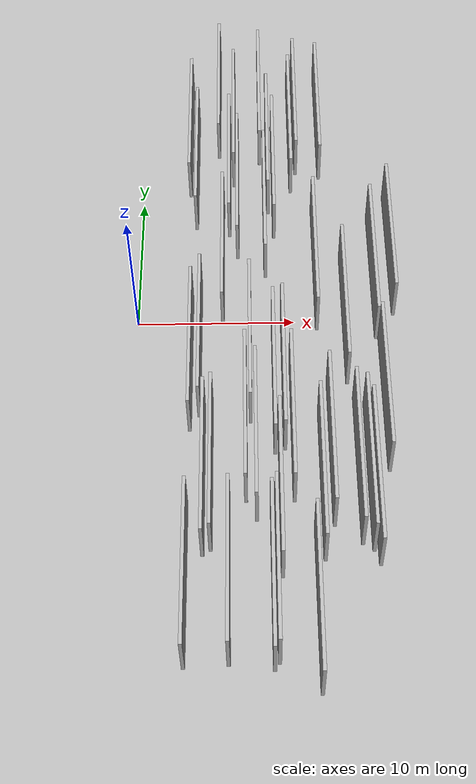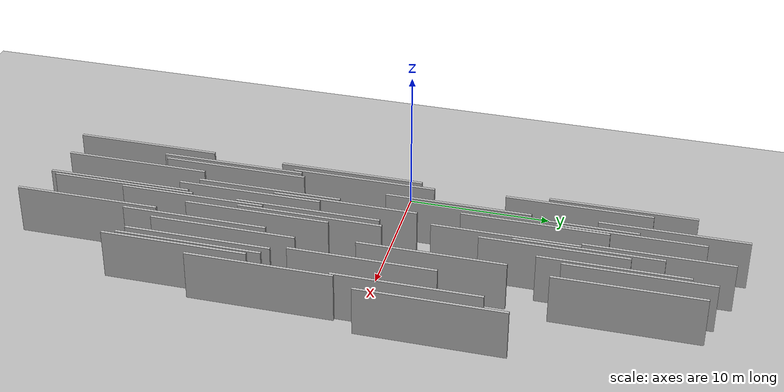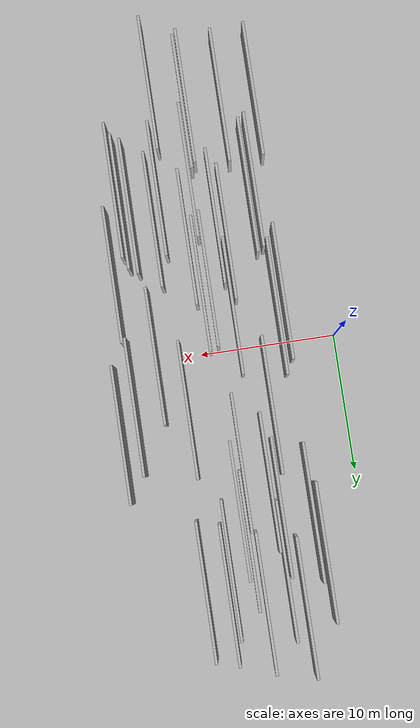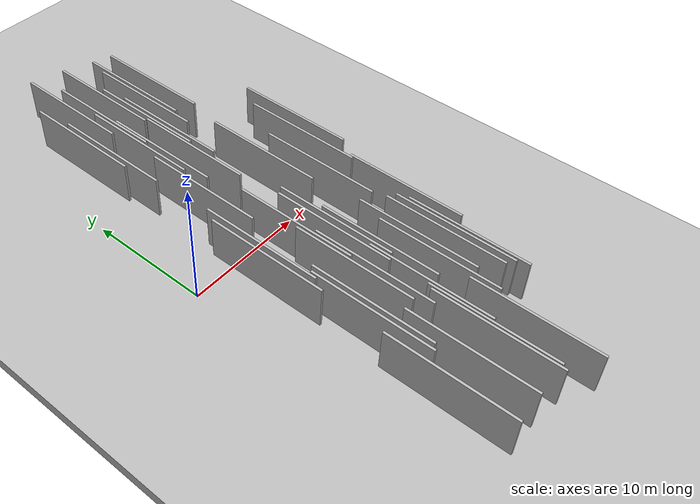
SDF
<?xml version="1.0" encoding="utf-8"?>

<sdf version="1.6">

   <world name="default">

      <gui fullscreen="0">

         <camera name="user_camera">

            <pose>-15 0 4.57585 0 0 0</pose>

            <view_controller>orbit</view_controller>

         </camera>

      </gui>

      <scene>

         <sky>

           <clouds>

             <speed>12</speed>

           </clouds>

         </sky>

         <ambient>0.4 0.4 0.4 1</ambient>

         <background>0.7 0.7 0.7 1</background>

         <shadows>1</shadows>

      </scene>

      <gravity>0 0 -9.8066</gravity>

      <magnetic_field>6e-06 2.3e-05 -4.2e-05</magnetic_field>

      <physics default="0" name="default_physics" type="ode">

         <ode>

            <solver>

               <type>quick</type>

               <iters>10</iters>

               <sor>1.0</sor>

               <use_dynamic_moi_rescaling>0</use_dynamic_moi_rescaling>

            </solver>

            <constraints>

               <cfm>0</cfm>

               <erp>0.2</erp>

               <contact_max_correcting_vel>100</contact_max_correcting_vel>

               <contact_surface_layer>0.001</contact_surface_layer>

            </constraints>

         </ode>

         <max_step_size>0.004</max_step_size>

         <real_time_factor>1</real_time_factor>

         <real_time_update_rate>250</real_time_update_rate>

      </physics>

      <light name="sun" type="directional">

         <cast_shadows>1</cast_shadows>

         <pose>0 0 10 0 0 0</pose>

         <diffuse>0.8 0.8 0.8 1</diffuse>

         <specular>0.2 0.2 0.2 1</specular>

         <attenuation>

            <range>1000</range>

            <constant>0.9</constant>

            <linear>0.01</linear>

            <quadratic>0.001</quadratic>

         </attenuation>

         <direction>-0.5 0.1 -0.9</direction>

      </light>

      <include>

         <name>ground_plane_1</name>

         <uri>model://HANNAS_ground_plane</uri>

         <pose>0 0 0  0 0 0</pose>

      </include>

      <include>

         <name>ground_plane_2</name>

         <uri>model://HANNAS_ground_plane</uri>

         <pose>100 0 0  0 0 0</pose>

      </include>

      <model name="HANNAS_wall_1">

         <static>1</static>

         <pose frame="">16.3726 5.1101 0.0 0.000000 0.000000 1.570796</pose>

         <link name="link">

            <pose frame="">0 0 2.00 0 0 0</pose>

            <collision name="collision">

               <geometry>

                  <box>

                     <size>10.00 0.2 4.00</size>

                  </box>

               </geometry>

               <max_contacts>10</max_contacts>

               <surface>

                  <contact>

                     <ode/>

                  </contact>

                  <bounce/>

                  <friction>

                     <torsional>

                        <ode/>

                     </torsional>

                     <ode/>

                  </friction>

               </surface>

            </collision>

            <visual name="visual">

               <cast_shadows>0</cast_shadows>

               <geometry>

                  <box>

                     <size>10.00 0.2 4.00</size>

                  </box>

               </geometry>

               <material>

                  <script>

                     <uri>model://HANNAS_wall/materials/scripts</uri>

                     <uri>model://HANNAS_wall/materials/textures</uri>

                     <name>vrc/HANNAS_wall</name>

                  </script>

               </material>

            </visual>

            <self_collide>0</self_collide>

            <enable_wind>0</enable_wind>

            <kinematic>0</kinematic>

         </link>

      </model>

      <model name="HANNAS_wall_2">

         <static>1</static>

         <pose frame="">14.4678 -12.4414 0.0 0.000000 0.000000 1.570796</pose>

         <link name="link">

            <pose frame="">0 0 2.00 0 0 0</pose>

            <collision name="collision">

               <geometry>

                  <box>

                     <size>10.00 0.2 4.00</size>

                  </box>

               </geometry>

               <max_contacts>10</max_contacts>

               <surface>

                  <contact>

                     <ode/>

                  </contact>

                  <bounce/>

                  <friction>

                     <torsional>

                        <ode/>

                     </torsional>

                     <ode/>

                  </friction>

               </surface>

            </collision>

            <visual name="visual">

               <cast_shadows>0</cast_shadows>

               <geometry>

                  <box>

                     <size>10.00 0.2 4.00</size>

                  </box>

               </geometry>

               <material>

                  <script>

                     <uri>model://HANNAS_wall/materials/scripts</uri>

                     <uri>model://HANNAS_wall/materials/textures</uri>

                     <name>vrc/HANNAS_wall</name>

                  </script>

               </material>

            </visual>

            <self_collide>0</self_collide>

            <enable_wind>0</enable_wind>

            <kinematic>0</kinematic>

         </link>

      </model>

      <model name="HANNAS_wall_3">

         <static>1</static>

         <pose frame="">13.5207 -11.1368 0.0 0.000000 0.000000 1.570796</pose>

         <link name="link">

            <pose frame="">0 0 2.00 0 0 0</pose>

            <collision name="collision">

               <geometry>

                  <box>

                     <size>10.00 0.2 4.00</size>

                  </box>

               </geometry>

               <max_contacts>10</max_contacts>

               <surface>

                  <contact>

                     <ode/>

                  </contact>

                  <bounce/>

                  <friction>

                     <torsional>

                        <ode/>

                     </torsional>

                     <ode/>

                  </friction>

               </surface>

            </collision>

            <visual name="visual">

               <cast_shadows>0</cast_shadows>

               <geometry>

                  <box>

                     <size>10.00 0.2 4.00</size>

                  </box>

               </geometry>

               <material>

                  <script>

                     <uri>model://HANNAS_wall/materials/scripts</uri>

                     <uri>model://HANNAS_wall/materials/textures</uri>

                     <name>vrc/HANNAS_wall</name>

                  </script>

               </material>

            </visual>

            <self_collide>0</self_collide>

            <enable_wind>0</enable_wind>

            <kinematic>0</kinematic>

         </link>

      </model>

      <model name="HANNAS_wall_4">

         <static>1</static>

         <pose frame="">8.8303 11.6349 0.0 0.000000 0.000000 1.570796</pose>

         <link name="link">

            <pose frame="">0 0 2.00 0 0 0</pose>

            <collision name="collision">

               <geometry>

                  <box>

                     <size>10.00 0.2 4.00</size>

                  </box>

               </geometry>

               <max_contacts>10</max_contacts>

               <surface>

                  <contact>

                     <ode/>

                  </contact>

                  <bounce/>

                  <friction>

                     <torsional>

                        <ode/>

                     </torsional>

                     <ode/>

                  </friction>

               </surface>

            </collision>

            <visual name="visual">

               <cast_shadows>0</cast_shadows>

               <geometry>

                  <box>

                     <size>10.00 0.2 4.00</size>

                  </box>

               </geometry>

               <material>

                  <script>

                     <uri>model://HANNAS_wall/materials/scripts</uri>

                     <uri>model://HANNAS_wall/materials/textures</uri>

                     <name>vrc/HANNAS_wall</name>

                  </script>

               </material>

            </visual>

            <self_collide>0</self_collide>

            <enable_wind>0</enable_wind>

            <kinematic>0</kinematic>

         </link>

      </model>

      <model name="HANNAS_wall_5">

         <static>1</static>

         <pose frame="">8.5995 -18.1956 0.0 0.000000 0.000000 1.570796</pose>

         <link name="link">

            <pose frame="">0 0 2.00 0 0 0</pose>

            <collision name="collision">

               <geometry>

                  <box>

                     <size>10.00 0.2 4.00</size>

                  </box>

               </geometry>

               <max_contacts>10</max_contacts>

               <surface>

                  <contact>

                     <ode/>

                  </contact>

                  <bounce/>

                  <friction>

                     <torsional>

                        <ode/>

                     </torsional>

                     <ode/>

                  </friction>

               </surface>

            </collision>

            <visual name="visual">

               <cast_shadows>0</cast_shadows>

               <geometry>

                  <box>

                     <size>10.00 0.2 4.00</size>

                  </box>

               </geometry>

               <material>

                  <script>

                     <uri>model://HANNAS_wall/materials/scripts</uri>

                     <uri>model://HANNAS_wall/materials/textures</uri>

                     <name>vrc/HANNAS_wall</name>

                  </script>

               </material>

            </visual>

            <self_collide>0</self_collide>

            <enable_wind>0</enable_wind>

            <kinematic>0</kinematic>

         </link>

      </model>

      <model name="HANNAS_wall_6">

         <static>1</static>

         <pose frame="">5.8146 -18.2855 0.0 0.000000 0.000000 1.570796</pose>

         <link name="link">

            <pose frame="">0 0 2.00 0 0 0</pose>

            <collision name="collision">

               <geometry>

                  <box>

                     <size>10.00 0.2 4.00</size>

                  </box>

               </geometry>

               <max_contacts>10</max_contacts>

               <surface>

                  <contact>

                     <ode/>

                  </contact>

                  <bounce/>

                  <friction>

                     <torsional>

                        <ode/>

                     </torsional>

                     <ode/>

                  </friction>

               </surface>

            </collision>

            <visual name="visual">

               <cast_shadows>0</cast_shadows>

               <geometry>

                  <box>

                     <size>10.00 0.2 4.00</size>

                  </box>

               </geometry>

               <material>

                  <script>

                     <uri>model://HANNAS_wall/materials/scripts</uri>

                     <uri>model://HANNAS_wall/materials/textures</uri>

                     <name>vrc/HANNAS_wall</name>

                  </script>

               </material>

            </visual>

            <self_collide>0</self_collide>

            <enable_wind>0</enable_wind>

            <kinematic>0</kinematic>

         </link>

      </model>

      <model name="HANNAS_wall_7">

         <static>1</static>

         <pose frame="">11.9483 -9.9297 0.0 0.000000 0.000000 1.570796</pose>

         <link name="link">

            <pose frame="">0 0 2.00 0 0 0</pose>

            <collision name="collision">

               <geometry>

                  <box>

                     <size>10.00 0.2 4.00</size>

                  </box>

               </geometry>

               <max_contacts>10</max_contacts>

               <surface>

                  <contact>

                     <ode/>

                  </contact>

                  <bounce/>

                  <friction>

                     <torsional>

                        <ode/>

                     </torsional>

                     <ode/>

                  </friction>

               </surface>

            </collision>

            <visual name="visual">

               <cast_shadows>0</cast_shadows>

               <geometry>

                  <box>

                     <size>10.00 0.2 4.00</size>

                  </box>

               </geometry>

               <material>

                  <script>

                     <uri>model://HANNAS_wall/materials/scripts</uri>

                     <uri>model://HANNAS_wall/materials/textures</uri>

                     <name>vrc/HANNAS_wall</name>

                  </script>

               </material>

            </visual>

            <self_collide>0</self_collide>

            <enable_wind>0</enable_wind>

            <kinematic>0</kinematic>

         </link>

      </model>

      <model name="HANNAS_wall_8">

         <static>1</static>

         <pose frame="">8.8784 -13.1266 0.0 0.000000 0.000000 1.570796</pose>

         <link name="link">

            <pose frame="">0 0 2.00 0 0 0</pose>

            <collision name="collision">

               <geometry>

                  <box>

                     <size>10.00 0.2 4.00</size>

                  </box>

               </geometry>

               <max_contacts>10</max_contacts>

               <surface>

                  <contact>

                     <ode/>

                  </contact>

                  <bounce/>

                  <friction>

                     <torsional>

                        <ode/>

                     </torsional>

                     <ode/>

                  </friction>

               </surface>

            </collision>

            <visual name="visual">

               <cast_shadows>0</cast_shadows>

               <geometry>

                  <box>

                     <size>10.00 0.2 4.00</size>

                  </box>

               </geometry>

               <material>

                  <script>

                     <uri>model://HANNAS_wall/materials/scripts</uri>

                     <uri>model://HANNAS_wall/materials/textures</uri>

                     <name>vrc/HANNAS_wall</name>

                  </script>

               </material>

            </visual>

            <self_collide>0</self_collide>

            <enable_wind>0</enable_wind>

            <kinematic>0</kinematic>

         </link>

      </model>

      <model name="HANNAS_wall_9">

         <static>1</static>

         <pose frame="">15.3824 -6.3594 0.0 0.000000 0.000000 1.570796</pose>

         <link name="link">

            <pose frame="">0 0 2.00 0 0 0</pose>

            <collision name="collision">

               <geometry>

                  <box>

                     <size>10.00 0.2 4.00</size>

                  </box>

               </geometry>

               <max_contacts>10</max_contacts>

               <surface>

                  <contact>

                     <ode/>

                  </contact>

                  <bounce/>

                  <friction>

                     <torsional>

                        <ode/>

                     </torsional>

                     <ode/>

                  </friction>

               </surface>

            </collision>

            <visual name="visual">

               <cast_shadows>0</cast_shadows>

               <geometry>

                  <box>

                     <size>10.00 0.2 4.00</size>

                  </box>

               </geometry>

               <material>

                  <script>

                     <uri>model://HANNAS_wall/materials/scripts</uri>

                     <uri>model://HANNAS_wall/materials/textures</uri>

                     <name>vrc/HANNAS_wall</name>

                  </script>

               </material>

            </visual>

            <self_collide>0</self_collide>

            <enable_wind>0</enable_wind>

            <kinematic>0</kinematic>

         </link>

      </model>

      <model name="HANNAS_wall_10">

         <static>1</static>

         <pose frame="">5.8717 11.8155 0.0 0.000000 0.000000 1.570796</pose>

         <link name="link">

            <pose frame="">0 0 2.00 0 0 0</pose>

            <collision name="collision">

               <geometry>

                  <box>

                     <size>10.00 0.2 4.00</size>

                  </box>

               </geometry>

               <max_contacts>10</max_contacts>

               <surface>

                  <contact>

                     <ode/>

                  </contact>

                  <bounce/>

                  <friction>

                     <torsional>

                        <ode/>

                     </torsional>

                     <ode/>

                  </friction>

               </surface>

            </collision>

            <visual name="visual">

               <cast_shadows>0</cast_shadows>

               <geometry>

                  <box>

                     <size>10.00 0.2 4.00</size>

                  </box>

               </geometry>

               <material>

                  <script>

                     <uri>model://HANNAS_wall/materials/scripts</uri>

                     <uri>model://HANNAS_wall/materials/textures</uri>

                     <name>vrc/HANNAS_wall</name>

                  </script>

               </material>

            </visual>

            <self_collide>0</self_collide>

            <enable_wind>0</enable_wind>

            <kinematic>0</kinematic>

         </link>

      </model>

      <model name="HANNAS_wall_11">

         <static>1</static>

         <pose frame="">3.3426 -18.4088 0.0 0.000000 0.000000 1.570796</pose>

         <link name="link">

            <pose frame="">0 0 2.00 0 0 0</pose>

            <collision name="collision">

               <geometry>

                  <box>

                     <size>10.00 0.2 4.00</size>

                  </box>

               </geometry>

               <max_contacts>10</max_contacts>

               <surface>

                  <contact>

                     <ode/>

                  </contact>

                  <bounce/>

                  <friction>

                     <torsional>

                        <ode/>

                     </torsional>

                     <ode/>

                  </friction>

               </surface>

            </collision>

            <visual name="visual">

               <cast_shadows>0</cast_shadows>

               <geometry>

                  <box>

                     <size>10.00 0.2 4.00</size>

                  </box>

               </geometry>

               <material>

                  <script>

                     <uri>model://HANNAS_wall/materials/scripts</uri>

                     <uri>model://HANNAS_wall/materials/textures</uri>

                     <name>vrc/HANNAS_wall</name>

                  </script>

               </material>

            </visual>

            <self_collide>0</self_collide>

            <enable_wind>0</enable_wind>

            <kinematic>0</kinematic>

         </link>

      </model>

      <model name="HANNAS_wall_12">

         <static>1</static>

         <pose frame="">10.4175 17.3347 0.0 0.000000 0.000000 1.570796</pose>

         <link name="link">

            <pose frame="">0 0 2.00 0 0 0</pose>

            <collision name="collision">

               <geometry>

                  <box>

                     <size>10.00 0.2 4.00</size>

                  </box>

               </geometry>

               <max_contacts>10</max_contacts>

               <surface>

                  <contact>

                     <ode/>

                  </contact>

                  <bounce/>

                  <friction>

                     <torsional>

                        <ode/>

                     </torsional>

                     <ode/>

                  </friction>

               </surface>

            </collision>

            <visual name="visual">

               <cast_shadows>0</cast_shadows>

               <geometry>

                  <box>

                     <size>10.00 0.2 4.00</size>

                  </box>

               </geometry>

               <material>

                  <script>

                     <uri>model://HANNAS_wall/materials/scripts</uri>

                     <uri>model://HANNAS_wall/materials/textures</uri>

                     <name>vrc/HANNAS_wall</name>

                  </script>

               </material>

            </visual>

            <self_collide>0</self_collide>

            <enable_wind>0</enable_wind>

            <kinematic>0</kinematic>

         </link>

      </model>

      <model name="HANNAS_wall_13">

         <static>1</static>

         <pose frame="">11.4310 4.0471 0.0 0.000000 0.000000 1.570796</pose>

         <link name="link">

            <pose frame="">0 0 2.00 0 0 0</pose>

            <collision name="collision">

               <geometry>

                  <box>

                     <size>10.00 0.2 4.00</size>

                  </box>

               </geometry>

               <max_contacts>10</max_contacts>

               <surface>

                  <contact>

                     <ode/>

                  </contact>

                  <bounce/>

                  <friction>

                     <torsional>

                        <ode/>

                     </torsional>

                     <ode/>

                  </friction>

               </surface>

            </collision>

            <visual name="visual">

               <cast_shadows>0</cast_shadows>

               <geometry>

                  <box>

                     <size>10.00 0.2 4.00</size>

                  </box>

               </geometry>

               <material>

                  <script>

                     <uri>model://HANNAS_wall/materials/scripts</uri>

                     <uri>model://HANNAS_wall/materials/textures</uri>

                     <name>vrc/HANNAS_wall</name>

                  </script>

               </material>

            </visual>

            <self_collide>0</self_collide>

            <enable_wind>0</enable_wind>

            <kinematic>0</kinematic>

         </link>

      </model>

      <model name="HANNAS_wall_14">

         <static>1</static>

         <pose frame="">12.0141 16.8772 0.0 0.000000 0.000000 1.570796</pose>

         <link name="link">

            <pose frame="">0 0 2.00 0 0 0</pose>

            <collision name="collision">

               <geometry>

                  <box>

                     <size>10.00 0.2 4.00</size>

                  </box>

               </geometry>

               <max_contacts>10</max_contacts>

               <surface>

                  <contact>

                     <ode/>

                  </contact>

                  <bounce/>

                  <friction>

                     <torsional>

                        <ode/>

                     </torsional>

                     <ode/>

                  </friction>

               </surface>

            </collision>

            <visual name="visual">

               <cast_shadows>0</cast_shadows>

               <geometry>

                  <box>

                     <size>10.00 0.2 4.00</size>

                  </box>

               </geometry>

               <material>

                  <script>

                     <uri>model://HANNAS_wall/materials/scripts</uri>

                     <uri>model://HANNAS_wall/materials/textures</uri>

                     <name>vrc/HANNAS_wall</name>

                  </script>

               </material>

            </visual>

            <self_collide>0</self_collide>

            <enable_wind>0</enable_wind>

            <kinematic>0</kinematic>

         </link>

      </model>

      <model name="HANNAS_wall_15">

         <static>1</static>

         <pose frame="">3.6835 12.4816 0.0 0.000000 0.000000 1.570796</pose>

         <link name="link">

            <pose frame="">0 0 2.00 0 0 0</pose>

            <collision name="collision">

               <geometry>

                  <box>

                     <size>10.00 0.2 4.00</size>

                  </box>

               </geometry>

               <max_contacts>10</max_contacts>

               <surface>

                  <contact>

                     <ode/>

                  </contact>

                  <bounce/>

                  <friction>

                     <torsional>

                        <ode/>

                     </torsional>

                     <ode/>

                  </friction>

               </surface>

            </collision>

            <visual name="visual">

               <cast_shadows>0</cast_shadows>

               <geometry>

                  <box>

                     <size>10.00 0.2 4.00</size>

                  </box>

               </geometry>

               <material>

                  <script>

                     <uri>model://HANNAS_wall/materials/scripts</uri>

                     <uri>model://HANNAS_wall/materials/textures</uri>

                     <name>vrc/HANNAS_wall</name>

                  </script>

               </material>

            </visual>

            <self_collide>0</self_collide>

            <enable_wind>0</enable_wind>

            <kinematic>0</kinematic>

         </link>

      </model>

      <model name="HANNAS_wall_16">

         <static>1</static>

         <pose frame="">3.4563 -3.3983 0.0 0.000000 0.000000 1.570796</pose>

         <link name="link">

            <pose frame="">0 0 2.00 0 0 0</pose>

            <collision name="collision">

               <geometry>

                  <box>

                     <size>10.00 0.2 4.00</size>

                  </box>

               </geometry>

               <max_contacts>10</max_contacts>

               <surface>

                  <contact>

                     <ode/>

                  </contact>

                  <bounce/>

                  <friction>

                     <torsional>

                        <ode/>

                     </torsional>

                     <ode/>

                  </friction>

               </surface>

            </collision>

            <visual name="visual">

               <cast_shadows>0</cast_shadows>

               <geometry>

                  <box>

                     <size>10.00 0.2 4.00</size>

                  </box>

               </geometry>

               <material>

                  <script>

                     <uri>model://HANNAS_wall/materials/scripts</uri>

                     <uri>model://HANNAS_wall/materials/textures</uri>

                     <name>vrc/HANNAS_wall</name>

                  </script>

               </material>

            </visual>

            <self_collide>0</self_collide>

            <enable_wind>0</enable_wind>

            <kinematic>0</kinematic>

         </link>

      </model>

      <model name="HANNAS_wall_17">

         <static>1</static>

         <pose frame="">11.3253 -12.1282 0.0 0.000000 0.000000 1.570796</pose>

         <link name="link">

            <pose frame="">0 0 2.00 0 0 0</pose>

            <collision name="collision">

               <geometry>

                  <box>

                     <size>10.00 0.2 4.00</size>

                  </box>

               </geometry>

               <max_contacts>10</max_contacts>

               <surface>

                  <contact>

                     <ode/>

                  </contact>

                  <bounce/>

                  <friction>

                     <torsional>

                        <ode/>

                     </torsional>

                     <ode/>

                  </friction>

               </surface>

            </collision>

            <visual name="visual">

               <cast_shadows>0</cast_shadows>

               <geometry>

                  <box>

                     <size>10.00 0.2 4.00</size>

                  </box>

               </geometry>

               <material>

                  <script>

                     <uri>model://HANNAS_wall/materials/scripts</uri>

                     <uri>model://HANNAS_wall/materials/textures</uri>

                     <name>vrc/HANNAS_wall</name>

                  </script>

               </material>

            </visual>

            <self_collide>0</self_collide>

            <enable_wind>0</enable_wind>

            <kinematic>0</kinematic>

         </link>

      </model>

      <model name="HANNAS_wall_18">

         <static>1</static>

         <pose frame="">14.1453 -11.5605 0.0 0.000000 0.000000 1.570796</pose>

         <link name="link">

            <pose frame="">0 0 2.00 0 0 0</pose>

            <collision name="collision">

               <geometry>

                  <box>

                     <size>10.00 0.2 4.00</size>

                  </box>

               </geometry>

               <max_contacts>10</max_contacts>

               <surface>

                  <contact>

                     <ode/>

                  </contact>

                  <bounce/>

                  <friction>

                     <torsional>

                        <ode/>

                     </torsional>

                     <ode/>

                  </friction>

               </surface>

            </collision>

            <visual name="visual">

               <cast_shadows>0</cast_shadows>

               <geometry>

                  <box>

                     <size>10.00 0.2 4.00</size>

                  </box>

               </geometry>

               <material>

                  <script>

                     <uri>model://HANNAS_wall/materials/scripts</uri>

                     <uri>model://HANNAS_wall/materials/textures</uri>

                     <name>vrc/HANNAS_wall</name>

                  </script>

               </material>

            </visual>

            <self_collide>0</self_collide>

            <enable_wind>0</enable_wind>

            <kinematic>0</kinematic>

         </link>

      </model>

      <model name="HANNAS_wall_19">

         <static>1</static>

         <pose frame="">5.4418 4.5537 0.0 0.000000 0.000000 1.570796</pose>

         <link name="link">

            <pose frame="">0 0 2.00 0 0 0</pose>

            <collision name="collision">

               <geometry>

                  <box>

                     <size>10.00 0.2 4.00</size>

                  </box>

               </geometry>

               <max_contacts>10</max_contacts>

               <surface>

                  <contact>

                     <ode/>

                  </contact>

                  <bounce/>

                  <friction>

                     <torsional>

                        <ode/>

                     </torsional>

                     <ode/>

                  </friction>

               </surface>

            </collision>

            <visual name="visual">

               <cast_shadows>0</cast_shadows>

               <geometry>

                  <box>

                     <size>10.00 0.2 4.00</size>

                  </box>

               </geometry>

               <material>

                  <script>

                     <uri>model://HANNAS_wall/materials/scripts</uri>

                     <uri>model://HANNAS_wall/materials/textures</uri>

                     <name>vrc/HANNAS_wall</name>

                  </script>

               </material>

            </visual>

            <self_collide>0</self_collide>

            <enable_wind>0</enable_wind>

            <kinematic>0</kinematic>

         </link>

      </model>

      <model name="HANNAS_wall_20">

         <static>1</static>

         <pose frame="">8.3228 -18.6007 0.0 0.000000 0.000000 1.570796</pose>

         <link name="link">

            <pose frame="">0 0 2.00 0 0 0</pose>

            <collision name="collision">

               <geometry>

                  <box>

                     <size>10.00 0.2 4.00</size>

                  </box>

               </geometry>

               <max_contacts>10</max_contacts>

               <surface>

                  <contact>

                     <ode/>

                  </contact>

                  <bounce/>

                  <friction>

                     <torsional>

                        <ode/>

                     </torsional>

                     <ode/>

                  </friction>

               </surface>

            </collision>

            <visual name="visual">

               <cast_shadows>0</cast_shadows>

               <geometry>

                  <box>

                     <size>10.00 0.2 4.00</size>

                  </box>

               </geometry>

               <material>

                  <script>

                     <uri>model://HANNAS_wall/materials/scripts</uri>

                     <uri>model://HANNAS_wall/materials/textures</uri>

                     <name>vrc/HANNAS_wall</name>

                  </script>

               </material>

            </visual>

            <self_collide>0</self_collide>

            <enable_wind>0</enable_wind>

            <kinematic>0</kinematic>

         </link>

      </model>

      <model name="HANNAS_wall_21">

         <static>1</static>

         <pose frame="">6.1828 16.2755 0.0 0.000000 0.000000 1.570796</pose>

         <link name="link">

            <pose frame="">0 0 2.00 0 0 0</pose>

            <collision name="collision">

               <geometry>

                  <box>

                     <size>10.00 0.2 4.00</size>

                  </box>

               </geometry>

               <max_contacts>10</max_contacts>

               <surface>

                  <contact>

                     <ode/>

                  </contact>

                  <bounce/>

                  <friction>

                     <torsional>

                        <ode/>

                     </torsional>

                     <ode/>

                  </friction>

               </surface>

            </collision>

            <visual name="visual">

               <cast_shadows>0</cast_shadows>

               <geometry>

                  <box>

                     <size>10.00 0.2 4.00</size>

                  </box>

               </geometry>

               <material>

                  <script>

                     <uri>model://HANNAS_wall/materials/scripts</uri>

                     <uri>model://HANNAS_wall/materials/textures</uri>

                     <name>vrc/HANNAS_wall</name>

                  </script>

               </material>

            </visual>

            <self_collide>0</self_collide>

            <enable_wind>0</enable_wind>

            <kinematic>0</kinematic>

         </link>

      </model>

      <model name="HANNAS_wall_22">

         <static>1</static>

         <pose frame="">15.1658 3.2987 0.0 0.000000 0.000000 1.570796</pose>

         <link name="link">

            <pose frame="">0 0 2.00 0 0 0</pose>

            <collision name="collision">

               <geometry>

                  <box>

                     <size>10.00 0.2 4.00</size>

                  </box>

               </geometry>

               <max_contacts>10</max_contacts>

               <surface>

                  <contact>

                     <ode/>

                  </contact>

                  <bounce/>

                  <friction>

                     <torsional>

                        <ode/>

                     </torsional>

                     <ode/>

                  </friction>

               </surface>

            </collision>

            <visual name="visual">

               <cast_shadows>0</cast_shadows>

               <geometry>

                  <box>

                     <size>10.00 0.2 4.00</size>

                  </box>

               </geometry>

               <material>

                  <script>

                     <uri>model://HANNAS_wall/materials/scripts</uri>

                     <uri>model://HANNAS_wall/materials/textures</uri>

                     <name>vrc/HANNAS_wall</name>

                  </script>

               </material>

            </visual>

            <self_collide>0</self_collide>

            <enable_wind>0</enable_wind>

            <kinematic>0</kinematic>

         </link>

      </model>

      <model name="HANNAS_wall_23">

         <static>1</static>

         <pose frame="">10.8510 -19.9565 0.0 0.000000 0.000000 1.570796</pose>

         <link name="link">

            <pose frame="">0 0 2.00 0 0 0</pose>

            <collision name="collision">

               <geometry>

                  <box>

                     <size>10.00 0.2 4.00</size>

                  </box>

               </geometry>

               <max_contacts>10</max_contacts>

               <surface>

                  <contact>

                     <ode/>

                  </contact>

                  <bounce/>

                  <friction>

                     <torsional>

                        <ode/>

                     </torsional>

                     <ode/>

                  </friction>

               </surface>

            </collision>

            <visual name="visual">

               <cast_shadows>0</cast_shadows>

               <geometry>

                  <box>

                     <size>10.00 0.2 4.00</size>

                  </box>

               </geometry>

               <material>

                  <script>

                     <uri>model://HANNAS_wall/materials/scripts</uri>

                     <uri>model://HANNAS_wall/materials/textures</uri>

                     <name>vrc/HANNAS_wall</name>

                  </script>

               </material>

            </visual>

            <self_collide>0</self_collide>

            <enable_wind>0</enable_wind>

            <kinematic>0</kinematic>

         </link>

      </model>

      <model name="HANNAS_wall_24">

         <static>1</static>

         <pose frame="">4.7761 -11.4144 0.0 0.000000 0.000000 1.570796</pose>

         <link name="link">

            <pose frame="">0 0 2.00 0 0 0</pose>

            <collision name="collision">

               <geometry>

                  <box>

                     <size>10.00 0.2 4.00</size>

                  </box>

               </geometry>

               <max_contacts>10</max_contacts>

               <surface>

                  <contact>

                     <ode/>

                  </contact>

                  <bounce/>

                  <friction>

                     <torsional>

                        <ode/>

                     </torsional>

                     <ode/>

                  </friction>

               </surface>

            </collision>

            <visual name="visual">

               <cast_shadows>0</cast_shadows>

               <geometry>

                  <box>

                     <size>10.00 0.2 4.00</size>

                  </box>

               </geometry>

               <material>

                  <script>

                     <uri>model://HANNAS_wall/materials/scripts</uri>

                     <uri>model://HANNAS_wall/materials/textures</uri>

                     <name>vrc/HANNAS_wall</name>

                  </script>

               </material>

            </visual>

            <self_collide>0</self_collide>

            <enable_wind>0</enable_wind>

            <kinematic>0</kinematic>

         </link>

      </model>

      <model name="HANNAS_wall_25">

         <static>1</static>

         <pose frame="">7.4531 -9.5289 0.0 0.000000 0.000000 1.570796</pose>

         <link name="link">

            <pose frame="">0 0 2.00 0 0 0</pose>

            <collision name="collision">

               <geometry>

                  <box>

                     <size>10.00 0.2 4.00</size>

                  </box>

               </geometry>

               <max_contacts>10</max_contacts>

               <surface>

                  <contact>

                     <ode/>

                  </contact>

                  <bounce/>

                  <friction>

                     <torsional>

                        <ode/>

                     </torsional>

                     <ode/>

                  </friction>

               </surface>

            </collision>

            <visual name="visual">

               <cast_shadows>0</cast_shadows>

               <geometry>

                  <box>

                     <size>10.00 0.2 4.00</size>

                  </box>

               </geometry>

               <material>

                  <script>

                     <uri>model://HANNAS_wall/materials/scripts</uri>

                     <uri>model://HANNAS_wall/materials/textures</uri>

                     <name>vrc/HANNAS_wall</name>

                  </script>

               </material>

            </visual>

            <self_collide>0</self_collide>

            <enable_wind>0</enable_wind>

            <kinematic>0</kinematic>

         </link>

      </model>

      <model name="HANNAS_wall_26">

         <static>1</static>

         <pose frame="">7.1513 -2.8729 0.0 0.000000 0.000000 1.570796</pose>

         <link name="link">

            <pose frame="">0 0 2.00 0 0 0</pose>

            <collision name="collision">

               <geometry>

                  <box>

                     <size>10.00 0.2 4.00</size>

                  </box>

               </geometry>

               <max_contacts>10</max_contacts>

               <surface>

                  <contact>

                     <ode/>

                  </contact>

                  <bounce/>

                  <friction>

                     <torsional>

                        <ode/>

                     </torsional>

                     <ode/>

                  </friction>

               </surface>

            </collision>

            <visual name="visual">

               <cast_shadows>0</cast_shadows>

               <geometry>

                  <box>

                     <size>10.00 0.2 4.00</size>

                  </box>

               </geometry>

               <material>

                  <script>

                     <uri>model://HANNAS_wall/materials/scripts</uri>

                     <uri>model://HANNAS_wall/materials/textures</uri>

                     <name>vrc/HANNAS_wall</name>

                  </script>

               </material>

            </visual>

            <self_collide>0</self_collide>

            <enable_wind>0</enable_wind>

            <kinematic>0</kinematic>

         </link>

      </model>

      <model name="HANNAS_wall_27">

         <static>1</static>

         <pose frame="">7.9524 18.2716 0.0 0.000000 0.000000 1.570796</pose>

         <link name="link">

            <pose frame="">0 0 2.00 0 0 0</pose>

            <collision name="collision">

               <geometry>

                  <box>

                     <size>10.00 0.2 4.00</size>

                  </box>

               </geometry>

               <max_contacts>10</max_contacts>

               <surface>

                  <contact>

                     <ode/>

                  </contact>

                  <bounce/>

                  <friction>

                     <torsional>

                        <ode/>

                     </torsional>

                     <ode/>

                  </friction>

               </surface>

            </collision>

            <visual name="visual">

               <cast_shadows>0</cast_shadows>

               <geometry>

                  <box>

                     <size>10.00 0.2 4.00</size>

                  </box>

               </geometry>

               <material>

                  <script>

                     <uri>model://HANNAS_wall/materials/scripts</uri>

                     <uri>model://HANNAS_wall/materials/textures</uri>

                     <name>vrc/HANNAS_wall</name>

                  </script>

               </material>

            </visual>

            <self_collide>0</self_collide>

            <enable_wind>0</enable_wind>

            <kinematic>0</kinematic>

         </link>

      </model>

      <model name="HANNAS_wall_28">

         <static>1</static>

         <pose frame="">6.4123 9.9309 0.0 0.000000 0.000000 1.570796</pose>

         <link name="link">

            <pose frame="">0 0 2.00 0 0 0</pose>

            <collision name="collision">

               <geometry>

                  <box>

                     <size>10.00 0.2 4.00</size>

                  </box>

               </geometry>

               <max_contacts>10</max_contacts>

               <surface>

                  <contact>

                     <ode/>

                  </contact>

                  <bounce/>

                  <friction>

                     <torsional>

                        <ode/>

                     </torsional>

                     <ode/>

                  </friction>

               </surface>

            </collision>

            <visual name="visual">

               <cast_shadows>0</cast_shadows>

               <geometry>

                  <box>

                     <size>10.00 0.2 4.00</size>

                  </box>

               </geometry>

               <material>

                  <script>

                     <uri>model://HANNAS_wall/materials/scripts</uri>

                     <uri>model://HANNAS_wall/materials/textures</uri>

                     <name>vrc/HANNAS_wall</name>

                  </script>

               </material>

            </visual>

            <self_collide>0</self_collide>

            <enable_wind>0</enable_wind>

            <kinematic>0</kinematic>

         </link>

      </model>

      <model name="HANNAS_wall_29">

         <static>1</static>

         <pose frame="">8.4632 13.7903 0.0 0.000000 0.000000 1.570796</pose>

         <link name="link">

            <pose frame="">0 0 2.00 0 0 0</pose>

            <collision name="collision">

               <geometry>

                  <box>

                     <size>10.00 0.2 4.00</size>

                  </box>

               </geometry>

               <max_contacts>10</max_contacts>

               <surface>

                  <contact>

                     <ode/>

                  </contact>

                  <bounce/>

                  <friction>

                     <torsional>

                        <ode/>

                     </torsional>

                     <ode/>

                  </friction>

               </surface>

            </collision>

            <visual name="visual">

               <cast_shadows>0</cast_shadows>

               <geometry>

                  <box>

                     <size>10.00 0.2 4.00</size>

                  </box>

               </geometry>

               <material>

                  <script>

                     <uri>model://HANNAS_wall/materials/scripts</uri>

                     <uri>model://HANNAS_wall/materials/textures</uri>

                     <name>vrc/HANNAS_wall</name>

                  </script>

               </material>

            </visual>

            <self_collide>0</self_collide>

            <enable_wind>0</enable_wind>

            <kinematic>0</kinematic>

         </link>

      </model>

      <model name="HANNAS_wall_30">

         <static>1</static>

         <pose frame="">8.2078 8.3042 0.0 0.000000 0.000000 1.570796</pose>

         <link name="link">

            <pose frame="">0 0 2.00 0 0 0</pose>

            <collision name="collision">

               <geometry>

                  <box>

                     <size>10.00 0.2 4.00</size>

                  </box>

               </geometry>

               <max_contacts>10</max_contacts>

               <surface>

                  <contact>

                     <ode/>

                  </contact>

                  <bounce/>

                  <friction>

                     <torsional>

                        <ode/>

                     </torsional>

                     <ode/>

                  </friction>

               </surface>

            </collision>

            <visual name="visual">

               <cast_shadows>0</cast_shadows>

               <geometry>

                  <box>

                     <size>10.00 0.2 4.00</size>

                  </box>

               </geometry>

               <material>

                  <script>

                     <uri>model://HANNAS_wall/materials/scripts</uri>

                     <uri>model://HANNAS_wall/materials/textures</uri>

                     <name>vrc/HANNAS_wall</name>

                  </script>

               </material>

            </visual>

            <self_collide>0</self_collide>

            <enable_wind>0</enable_wind>

            <kinematic>0</kinematic>

         </link>

      </model>

      <model name="HANNAS_wall_31">

         <static>1</static>

         <pose frame="">8.6092 -5.0825 0.0 0.000000 0.000000 1.570796</pose>

         <link name="link">

            <pose frame="">0 0 2.00 0 0 0</pose>

            <collision name="collision">

               <geometry>

                  <box>

                     <size>10.00 0.2 4.00</size>

                  </box>

               </geometry>

               <max_contacts>10</max_contacts>

               <surface>

                  <contact>

                     <ode/>

                  </contact>

                  <bounce/>

                  <friction>

                     <torsional>

                        <ode/>

                     </torsional>

                     <ode/>

                  </friction>

               </surface>

            </collision>

            <visual name="visual">

               <cast_shadows>0</cast_shadows>

               <geometry>

                  <box>

                     <size>10.00 0.2 4.00</size>

                  </box>

               </geometry>

               <material>

                  <script>

                     <uri>model://HANNAS_wall/materials/scripts</uri>

                     <uri>model://HANNAS_wall/materials/textures</uri>

                     <name>vrc/HANNAS_wall</name>

                  </script>

               </material>

            </visual>

            <self_collide>0</self_collide>

            <enable_wind>0</enable_wind>

            <kinematic>0</kinematic>

         </link>

      </model>

      <model name="HANNAS_wall_32">

         <static>1</static>

         <pose frame="">9.2055 -4.7877 0.0 0.000000 0.000000 1.570796</pose>

         <link name="link">

            <pose frame="">0 0 2.00 0 0 0</pose>

            <collision name="collision">

               <geometry>

                  <box>

                     <size>10.00 0.2 4.00</size>

                  </box>

               </geometry>

               <max_contacts>10</max_contacts>

               <surface>

                  <contact>

                     <ode/>

                  </contact>

                  <bounce/>

                  <friction>

                     <torsional>

                        <ode/>

                     </torsional>

                     <ode/>

                  </friction>

               </surface>

            </collision>

            <visual name="visual">

               <cast_shadows>0</cast_shadows>

               <geometry>

                  <box>

                     <size>10.00 0.2 4.00</size>

                  </box>

               </geometry>

               <material>

                  <script>

                     <uri>model://HANNAS_wall/materials/scripts</uri>

                     <uri>model://HANNAS_wall/materials/textures</uri>

                     <name>vrc/HANNAS_wall</name>

                  </script>

               </material>

            </visual>

            <self_collide>0</self_collide>

            <enable_wind>0</enable_wind>

            <kinematic>0</kinematic>

         </link>

      </model>

      <model name="HANNAS_wall_33">

         <static>1</static>

         <pose frame="">4.0180 -2.3888 0.0 0.000000 0.000000 1.570796</pose>

         <link name="link">

            <pose frame="">0 0 2.00 0 0 0</pose>

            <collision name="collision">

               <geometry>

                  <box>

                     <size>10.00 0.2 4.00</size>

                  </box>

               </geometry>

               <max_contacts>10</max_contacts>

               <surface>

                  <contact>

                     <ode/>

                  </contact>

                  <bounce/>

                  <friction>

                     <torsional>

                        <ode/>

                     </torsional>

                     <ode/>

                  </friction>

               </surface>

            </collision>

            <visual name="visual">

               <cast_shadows>0</cast_shadows>

               <geometry>

                  <box>

                     <size>10.00 0.2 4.00</size>

                  </box>

               </geometry>

               <material>

                  <script>

                     <uri>model://HANNAS_wall/materials/scripts</uri>

                     <uri>model://HANNAS_wall/materials/textures</uri>

                     <name>vrc/HANNAS_wall</name>

                  </script>

               </material>

            </visual>

            <self_collide>0</self_collide>

            <enable_wind>0</enable_wind>

            <kinematic>0</kinematic>

         </link>

      </model>

      <model name="HANNAS_wall_34">

         <static>1</static>

         <pose frame="">9.6763 -8.3036 0.0 0.000000 0.000000 1.570796</pose>

         <link name="link">

            <pose frame="">0 0 2.00 0 0 0</pose>

            <collision name="collision">

               <geometry>

                  <box>

                     <size>10.00 0.2 4.00</size>

                  </box>

               </geometry>

               <max_contacts>10</max_contacts>

               <surface>

                  <contact>

                     <ode/>

                  </contact>

                  <bounce/>

                  <friction>

                     <torsional>

                        <ode/>

                     </torsional>

                     <ode/>

                  </friction>

               </surface>

            </collision>

            <visual name="visual">

               <cast_shadows>0</cast_shadows>

               <geometry>

                  <box>

                     <size>10.00 0.2 4.00</size>

                  </box>

               </geometry>

               <material>

                  <script>

                     <uri>model://HANNAS_wall/materials/scripts</uri>

                     <uri>model://HANNAS_wall/materials/textures</uri>

                     <name>vrc/HANNAS_wall</name>

                  </script>

               </material>

            </visual>

            <self_collide>0</self_collide>

            <enable_wind>0</enable_wind>

            <kinematic>0</kinematic>

         </link>

      </model>

      <model name="HANNAS_wall_35">

         <static>1</static>

         <pose frame="">3.2280 15.3766 0.0 0.000000 0.000000 1.570796</pose>

         <link name="link">

            <pose frame="">0 0 2.00 0 0 0</pose>

            <collision name="collision">

               <geometry>

                  <box>

                     <size>10.00 0.2 4.00</size>

                  </box>

               </geometry>

               <max_contacts>10</max_contacts>

               <surface>

                  <contact>

                     <ode/>

                  </contact>

                  <bounce/>

                  <friction>

                     <torsional>

                        <ode/>

                     </torsional>

                     <ode/>

                  </friction>

               </surface>

            </collision>

            <visual name="visual">

               <cast_shadows>0</cast_shadows>

               <geometry>

                  <box>

                     <size>10.00 0.2 4.00</size>

                  </box>

               </geometry>

               <material>

                  <script>

                     <uri>model://HANNAS_wall/materials/scripts</uri>

                     <uri>model://HANNAS_wall/materials/textures</uri>

                     <name>vrc/HANNAS_wall</name>

                  </script>

               </material>

            </visual>

            <self_collide>0</self_collide>

            <enable_wind>0</enable_wind>

            <kinematic>0</kinematic>

         </link>

      </model>

      <model name="HANNAS_wall_36">

         <static>1</static>

         <pose frame="">5.1615 18.9726 0.0 0.000000 0.000000 1.570796</pose>

         <link name="link">

            <pose frame="">0 0 2.00 0 0 0</pose>

            <collision name="collision">

               <geometry>

                  <box>

                     <size>10.00 0.2 4.00</size>

                  </box>

               </geometry>

               <max_contacts>10</max_contacts>

               <surface>

                  <contact>

                     <ode/>

                  </contact>

                  <bounce/>

                  <friction>

                     <torsional>

                        <ode/>

                     </torsional>

                     <ode/>

                  </friction>

               </surface>

            </collision>

            <visual name="visual">

               <cast_shadows>0</cast_shadows>

               <geometry>

                  <box>

                     <size>10.00 0.2 4.00</size>

                  </box>

               </geometry>

               <material>

                  <script>

                     <uri>model://HANNAS_wall/materials/scripts</uri>

                     <uri>model://HANNAS_wall/materials/textures</uri>

                     <name>vrc/HANNAS_wall</name>

                  </script>

               </material>

            </visual>

            <self_collide>0</self_collide>

            <enable_wind>0</enable_wind>

            <kinematic>0</kinematic>

         </link>

      </model>

      <model name="HANNAS_wall_37">

         <static>1</static>

         <pose frame="">10.0373 15.6563 0.0 0.000000 0.000000 1.570796</pose>

         <link name="link">

            <pose frame="">0 0 2.00 0 0 0</pose>

            <collision name="collision">

               <geometry>

                  <box>

                     <size>10.00 0.2 4.00</size>

                  </box>

               </geometry>

               <max_contacts>10</max_contacts>

               <surface>

                  <contact>

                     <ode/>

                  </contact>

                  <bounce/>

                  <friction>

                     <torsional>

                        <ode/>

                     </torsional>

                     <ode/>

                  </friction>

               </surface>

            </collision>

            <visual name="visual">

               <cast_shadows>0</cast_shadows>

               <geometry>

                  <box>

                     <size>10.00 0.2 4.00</size>

                  </box>

               </geometry>

               <material>

                  <script>

                     <uri>model://HANNAS_wall/materials/scripts</uri>

                     <uri>model://HANNAS_wall/materials/textures</uri>

                     <name>vrc/HANNAS_wall</name>

                  </script>

               </material>

            </visual>

            <self_collide>0</self_collide>

            <enable_wind>0</enable_wind>

            <kinematic>0</kinematic>

         </link>

      </model>

      <model name="HANNAS_wall_38">

         <static>1</static>

         <pose frame="">13.1709 -0.1128 0.0 0.000000 0.000000 1.570796</pose>

         <link name="link">

            <pose frame="">0 0 2.00 0 0 0</pose>

            <collision name="collision">

               <geometry>

                  <box>

                     <size>10.00 0.2 4.00</size>

                  </box>

               </geometry>

               <max_contacts>10</max_contacts>

               <surface>

                  <contact>

                     <ode/>

                  </contact>

                  <bounce/>

                  <friction>

                     <torsional>

                        <ode/>

                     </torsional>

                     <ode/>

                  </friction>

               </surface>

            </collision>

            <visual name="visual">

               <cast_shadows>0</cast_shadows>

               <geometry>

                  <box>

                     <size>10.00 0.2 4.00</size>

                  </box>

               </geometry>

               <material>

                  <script>

                     <uri>model://HANNAS_wall/materials/scripts</uri>

                     <uri>model://HANNAS_wall/materials/textures</uri>

                     <name>vrc/HANNAS_wall</name>

                  </script>

               </material>

            </visual>

            <self_collide>0</self_collide>

            <enable_wind>0</enable_wind>

            <kinematic>0</kinematic>

         </link>

      </model>

      <model name="HANNAS_wall_39">

         <static>1</static>

         <pose frame="">6.8315 -8.2927 0.0 0.000000 0.000000 1.570796</pose>

         <link name="link">

            <pose frame="">0 0 2.00 0 0 0</pose>

            <collision name="collision">

               <geometry>

                  <box>

                     <size>10.00 0.2 4.00</size>

                  </box>

               </geometry>

               <max_contacts>10</max_contacts>

               <surface>

                  <contact>

                     <ode/>

                  </contact>

                  <bounce/>

                  <friction>

                     <torsional>

                        <ode/>

                     </torsional>

                     <ode/>

                  </friction>

               </surface>

            </collision>

            <visual name="visual">

               <cast_shadows>0</cast_shadows>

               <geometry>

                  <box>

                     <size>10.00 0.2 4.00</size>

                  </box>

               </geometry>

               <material>

                  <script>

                     <uri>model://HANNAS_wall/materials/scripts</uri>

                     <uri>model://HANNAS_wall/materials/textures</uri>

                     <name>vrc/HANNAS_wall</name>

                  </script>

               </material>

            </visual>

            <self_collide>0</self_collide>

            <enable_wind>0</enable_wind>

            <kinematic>0</kinematic>

         </link>

      </model>

      <model name="HANNAS_wall_40">

         <static>1</static>

         <pose frame="">4.3065 -11.7328 0.0 0.000000 0.000000 1.570796</pose>

         <link name="link">

            <pose frame="">0 0 2.00 0 0 0</pose>

            <collision name="collision">

               <geometry>

                  <box>

                     <size>10.00 0.2 4.00</size>

                  </box>

               </geometry>

               <max_contacts>10</max_contacts>

               <surface>

                  <contact>

                     <ode/>

                  </contact>

                  <bounce/>

                  <friction>

                     <torsional>

                        <ode/>

                     </torsional>

                     <ode/>

                  </friction>

               </surface>

            </collision>

            <visual name="visual">

               <cast_shadows>0</cast_shadows>

               <geometry>

                  <box>

                     <size>10.00 0.2 4.00</size>

                  </box>

               </geometry>

               <material>

                  <script>

                     <uri>model://HANNAS_wall/materials/scripts</uri>

                     <uri>model://HANNAS_wall/materials/textures</uri>

                     <name>vrc/HANNAS_wall</name>

                  </script>

               </material>

            </visual>

            <self_collide>0</self_collide>

            <enable_wind>0</enable_wind>

            <kinematic>0</kinematic>

         </link>

      </model>

   </world>

</sdf>
